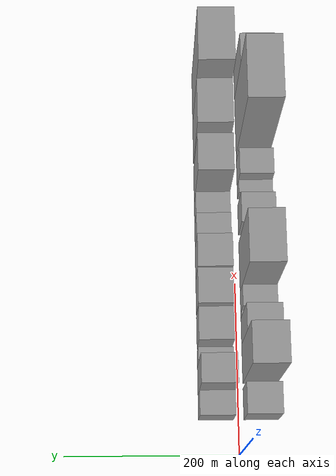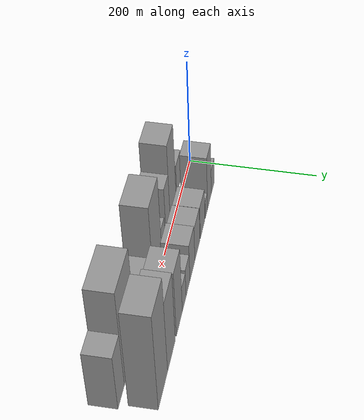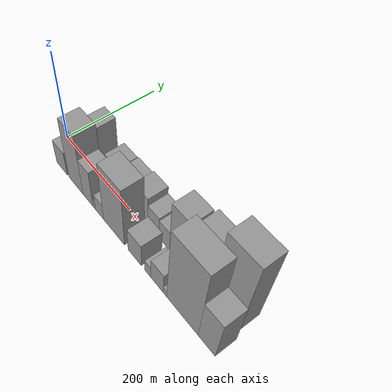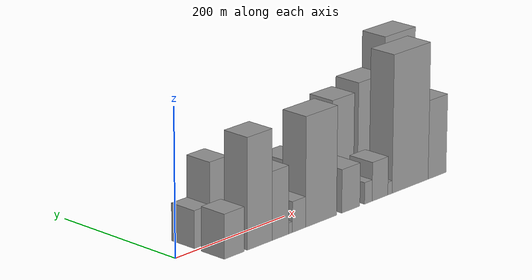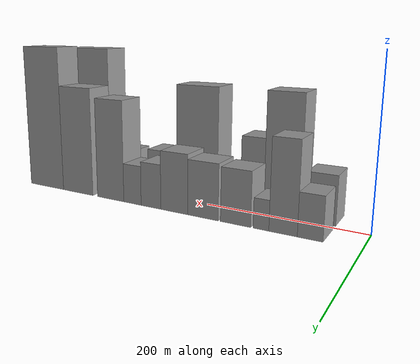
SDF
<sdf version="1.6">
 <world name="default">
  <scene>
   <sky><clouds><speed>12</speed></clouds></sky>
   <ambient>0.4 0.4 0.4 1</ambient>
   <background>0.7 0.7 0.7 1</background>
   <shadows>1</shadows>
  </scene>
  <gravity>0 0 -9.8066</gravity>
  <magnetic_field>6e-06 2.3e-05 -4.2e-05</magnetic_field>
  <physics default="0" name="default_physics" type="ode">
   <ode>
    <solver>
     <type>quick</type>
     <iters>10</iters>
     <sor>1.0</sor>
     <use_dynamic_moi_rescaling>0</use_dynamic_moi_rescaling>
    </solver>
    <constraints>
     <cfm>0</cfm>
     <erp>0.2</erp>
     <contact_max_correcting_vel>100</contact_max_correcting_vel>
     <contact_surface_layer>0.001</contact_surface_layer>
    </constraints>
   </ode>
   <max_step_size>0.004</max_step_size>
   <real_time_factor>1</real_time_factor>
   <real_time_update_rate>250</real_time_update_rate>
  </physics>
  <light name="sun" type="directional">
   <pose>0 0 10 0 0 0</pose>
   <diffuse>0.8 0.8 0.8 1</diffuse>
   <specular>0.2 0.2 0.2 1</specular>
   <attenuation>
    <range>1000</range>
    <constant>0.9</constant>
    <linear>0.01</linear>
    <quadratic>0.001</quadratic>
   </attenuation>
   <direction>-0.5 0.1 -0.9</direction>
  </light>
  <model name="building_1">
   <static>1</static>
   <pose>53.9610 26.0000 0 0.000000 0.000000 1.570796</pose>
   <link name="link">
    <pose>0 0 25.50 0 0 0</pose>
    <collision name="collision"><geometry><box><size>40.0000 27.9219 51.0000</size></box></geometry></collision>
    <visual name="visual">
     <cast_shadows>0</cast_shadows>
     <geometry><box><size>40.0000 27.9219 51.0000</size></box></geometry>
     <material>
      <script>
       <uri>model://grey_wall/materials/scripts</uri>
       <uri>model://grey_wall/materials/textures</uri>
       <name>vrc/grey_wall</name>
      </script>
     </material>
    </visual>
   </link>
  </model>
  <model name="building_2">
   <static>1</static>
   <pose>84.1409 26.0000 0 0.000000 0.000000 1.570796</pose>
   <link name="link">
    <pose>0 0 54.00 0 0 0</pose>
    <collision name="collision"><geometry><box><size>40.0000 32.4379 108.0000</size></box></geometry></collision>
    <visual name="visual">
     <cast_shadows>0</cast_shadows>
     <geometry><box><size>40.0000 32.4379 108.0000</size></box></geometry>
     <material>
      <script>
       <uri>model://grey_wall/materials/scripts</uri>
       <uri>model://grey_wall/materials/textures</uri>
       <name>vrc/grey_wall</name>
      </script>
     </material>
    </visual>
   </link>
  </model>
  <model name="building_3">
   <static>1</static>
   <pose>109.6904 26.0000 0 0.000000 0.000000 1.570796</pose>
   <link name="link">
    <pose>0 0 18.00 0 0 0</pose>
    <collision name="collision"><geometry><box><size>40.0000 18.6612 36.0000</size></box></geometry></collision>
    <visual name="visual">
     <cast_shadows>0</cast_shadows>
     <geometry><box><size>40.0000 18.6612 36.0000</size></box></geometry>
     <material>
      <script>
       <uri>model://grey_wall/materials/scripts</uri>
       <uri>model://grey_wall/materials/textures</uri>
       <name>vrc/grey_wall</name>
      </script>
     </material>
    </visual>
   </link>
  </model>
  <model name="building_4">
   <static>1</static>
   <pose>140.9340 26.0000 0 0.000000 0.000000 1.570796</pose>
   <link name="link">
    <pose>0 0 33.00 0 0 0</pose>
    <collision name="collision"><geometry><box><size>40.0000 37.8259 66.0000</size></box></geometry></collision>
    <visual name="visual">
     <cast_shadows>0</cast_shadows>
     <geometry><box><size>40.0000 37.8259 66.0000</size></box></geometry>
     <material>
      <script>
       <uri>model://grey_wall/materials/scripts</uri>
       <uri>model://grey_wall/materials/textures</uri>
       <name>vrc/grey_wall</name>
      </script>
     </material>
    </visual>
   </link>
  </model>
  <model name="building_5">
   <static>1</static>
   <pose>183.2874 26.0000 0 0.000000 0.000000 1.570796</pose>
   <link name="link">
    <pose>0 0 34.50 0 0 0</pose>
    <collision name="collision"><geometry><box><size>40.0000 40.8809 69.0000</size></box></geometry></collision>
    <visual name="visual">
     <cast_shadows>0</cast_shadows>
     <geometry><box><size>40.0000 40.8809 69.0000</size></box></geometry>
     <material>
      <script>
       <uri>model://grey_wall/materials/scripts</uri>
       <uri>model://grey_wall/materials/textures</uri>
       <name>vrc/grey_wall</name>
      </script>
     </material>
    </visual>
   </link>
  </model>
  <model name="building_6">
   <static>1</static>
   <pose>222.8308 26.0000 0 0.000000 0.000000 1.570796</pose>
   <link name="link">
    <pose>0 0 37.50 0 0 0</pose>
    <collision name="collision"><geometry><box><size>40.0000 38.2059 75.0000</size></box></geometry></collision>
    <visual name="visual">
     <cast_shadows>0</cast_shadows>
     <geometry><box><size>40.0000 38.2059 75.0000</size></box></geometry>
     <material>
      <script>
       <uri>model://grey_wall/materials/scripts</uri>
       <uri>model://grey_wall/materials/textures</uri>
       <name>vrc/grey_wall</name>
      </script>
     </material>
    </visual>
   </link>
  </model>
  <model name="building_7">
   <static>1</static>
   <pose>256.6261 26.0000 0 0.000000 0.000000 1.570796</pose>
   <link name="link">
    <pose>0 0 28.50 0 0 0</pose>
    <collision name="collision"><geometry><box><size>40.0000 29.3845 57.0000</size></box></geometry></collision>
    <visual name="visual">
     <cast_shadows>0</cast_shadows>
     <geometry><box><size>40.0000 29.3845 57.0000</size></box></geometry>
     <material>
      <script>
       <uri>model://grey_wall/materials/scripts</uri>
       <uri>model://grey_wall/materials/textures</uri>
       <name>vrc/grey_wall</name>
      </script>
     </material>
    </visual>
   </link>
  </model>
  <model name="building_8">
   <static>1</static>
   <pose>284.8140 26.0000 0 0.000000 0.000000 1.570796</pose>
   <link name="link">
    <pose>0 0 25.50 0 0 0</pose>
    <collision name="collision"><geometry><box><size>40.0000 26.9914 51.0000</size></box></geometry></collision>
    <visual name="visual">
     <cast_shadows>0</cast_shadows>
     <geometry><box><size>40.0000 26.9914 51.0000</size></box></geometry>
     <material>
      <script>
       <uri>model://grey_wall/materials/scripts</uri>
       <uri>model://grey_wall/materials/textures</uri>
       <name>vrc/grey_wall</name>
      </script>
     </material>
    </visual>
   </link>
  </model>
  <model name="building_9">
   <static>1</static>
   <pose>319.8111 26.0000 0 0.000000 0.000000 1.570796</pose>
   <link name="link">
    <pose>0 0 66.00 0 0 0</pose>
    <collision name="collision"><geometry><box><size>40.0000 43.0029 132.0000</size></box></geometry></collision>
    <visual name="visual">
     <cast_shadows>0</cast_shadows>
     <geometry><box><size>40.0000 43.0029 132.0000</size></box></geometry>
     <material>
      <script>
       <uri>model://grey_wall/materials/scripts</uri>
       <uri>model://grey_wall/materials/textures</uri>
       <name>vrc/grey_wall</name>
      </script>
     </material>
    </visual>
   </link>
  </model>
  <model name="building_10">
   <static>1</static>
   <pose>375.3507 26.0000 0 0.000000 0.000000 1.570796</pose>
   <link name="link">
    <pose>0 0 72.00 0 0 0</pose>
    <collision name="collision"><geometry><box><size>40.0000 52.0764 144.0000</size></box></geometry></collision>
    <visual name="visual">
     <cast_shadows>0</cast_shadows>
     <geometry><box><size>40.0000 52.0764 144.0000</size></box></geometry>
     <material>
      <script>
       <uri>model://grey_wall/materials/scripts</uri>
       <uri>model://grey_wall/materials/textures</uri>
       <name>vrc/grey_wall</name>
      </script>
     </material>
    </visual>
   </link>
  </model>
  <model name="building_11">
   <static>1</static>
   <pose>432.0049 26.0000 0 0.000000 0.000000 1.570796</pose>
   <link name="link">
    <pose>0 0 97.50 0 0 0</pose>
    <collision name="collision"><geometry><box><size>40.0000 61.2319 195.0000</size></box></geometry></collision>
    <visual name="visual">
     <cast_shadows>0</cast_shadows>
     <geometry><box><size>40.0000 61.2319 195.0000</size></box></geometry>
     <material>
      <script>
       <uri>model://grey_wall/materials/scripts</uri>
       <uri>model://grey_wall/materials/textures</uri>
       <name>vrc/grey_wall</name>
      </script>
     </material>
    </visual>
   </link>
  </model>
  <model name="building_12">
   <static>1</static>
   <pose>57.8651 -26.0000 0 0.000000 0.000000 1.570796</pose>
   <link name="link">
    <pose>0 0 30.00 0 0 0</pose>
    <collision name="collision"><geometry><box><size>40.0000 35.7302 60.0000</size></box></geometry></collision>
    <visual name="visual">
     <cast_shadows>0</cast_shadows>
     <geometry><box><size>40.0000 35.7302 60.0000</size></box></geometry>
     <material>
      <script>
       <uri>model://grey_wall/materials/scripts</uri>
       <uri>model://grey_wall/materials/textures</uri>
       <name>vrc/grey_wall</name>
      </script>
     </material>
    </visual>
   </link>
  </model>
  <model name="building_13">
   <static>1</static>
   <pose>104.4608 -26.0000 0 0.000000 0.000000 1.570796</pose>
   <link name="link">
    <pose>0 0 75.00 0 0 0</pose>
    <collision name="collision"><geometry><box><size>40.0000 45.4612 150.0000</size></box></geometry></collision>
    <visual name="visual">
     <cast_shadows>0</cast_shadows>
     <geometry><box><size>40.0000 45.4612 150.0000</size></box></geometry>
     <material>
      <script>
       <uri>model://grey_wall/materials/scripts</uri>
       <uri>model://grey_wall/materials/textures</uri>
       <name>vrc/grey_wall</name>
      </script>
     </material>
    </visual>
   </link>
  </model>
  <model name="building_14">
   <static>1</static>
   <pose>142.5505 -26.0000 0 0.000000 0.000000 1.570796</pose>
   <link name="link">
    <pose>0 0 46.50 0 0 0</pose>
    <collision name="collision"><geometry><box><size>40.0000 30.7182 93.0000</size></box></geometry></collision>
    <visual name="visual">
     <cast_shadows>0</cast_shadows>
     <geometry><box><size>40.0000 30.7182 93.0000</size></box></geometry>
     <material>
      <script>
       <uri>model://grey_wall/materials/scripts</uri>
       <uri>model://grey_wall/materials/textures</uri>
       <name>vrc/grey_wall</name>
      </script>
     </material>
    </visual>
   </link>
  </model>
  <model name="building_15">
   <static>1</static>
   <pose>161.4227 -26.0000 0 0.000000 0.000000 1.570796</pose>
   <link name="link">
    <pose>0 0 7.50 0 0 0</pose>
    <collision name="collision"><geometry><box><size>40.0000 7.0263 15.0000</size></box></geometry></collision>
    <visual name="visual">
     <cast_shadows>0</cast_shadows>
     <geometry><box><size>40.0000 7.0263 15.0000</size></box></geometry>
     <material>
      <script>
       <uri>model://grey_wall/materials/scripts</uri>
       <uri>model://grey_wall/materials/textures</uri>
       <name>vrc/grey_wall</name>
      </script>
     </material>
    </visual>
   </link>
  </model>
  <model name="building_16">
   <static>1</static>
   <pose>177.3652 -26.0000 0 0.000000 0.000000 1.570796</pose>
   <link name="link">
    <pose>0 0 21.00 0 0 0</pose>
    <collision name="collision"><geometry><box><size>40.0000 24.8586 42.0000</size></box></geometry></collision>
    <visual name="visual">
     <cast_shadows>0</cast_shadows>
     <geometry><box><size>40.0000 24.8586 42.0000</size></box></geometry>
     <material>
      <script>
       <uri>model://grey_wall/materials/scripts</uri>
       <uri>model://grey_wall/materials/textures</uri>
       <name>vrc/grey_wall</name>
      </script>
     </material>
    </visual>
   </link>
  </model>
  <model name="building_17">
   <static>1</static>
   <pose>219.5903 -26.0000 0 0.000000 0.000000 1.570796</pose>
   <link name="link">
    <pose>0 0 75.00 0 0 0</pose>
    <collision name="collision"><geometry><box><size>40.0000 59.5916 150.0000</size></box></geometry></collision>
    <visual name="visual">
     <cast_shadows>0</cast_shadows>
     <geometry><box><size>40.0000 59.5916 150.0000</size></box></geometry>
     <material>
      <script>
       <uri>model://grey_wall/materials/scripts</uri>
       <uri>model://grey_wall/materials/textures</uri>
       <name>vrc/grey_wall</name>
      </script>
     </material>
    </visual>
   </link>
  </model>
  <model name="building_18">
   <static>1</static>
   <pose>277.1664 -26.0000 0 0.000000 0.000000 1.570796</pose>
   <link name="link">
    <pose>0 0 30.00 0 0 0</pose>
    <collision name="collision"><geometry><box><size>40.0000 35.5606 60.0000</size></box></geometry></collision>
    <visual name="visual">
     <cast_shadows>0</cast_shadows>
     <geometry><box><size>40.0000 35.5606 60.0000</size></box></geometry>
     <material>
      <script>
       <uri>model://grey_wall/materials/scripts</uri>
       <uri>model://grey_wall/materials/textures</uri>
       <name>vrc/grey_wall</name>
      </script>
     </material>
    </visual>
   </link>
  </model>
  <model name="building_19">
   <static>1</static>
   <pose>311.5501 -26.0000 0 0.000000 0.000000 1.570796</pose>
   <link name="link">
    <pose>0 0 15.00 0 0 0</pose>
    <collision name="collision"><geometry><box><size>40.0000 15.2067 30.0000</size></box></geometry></collision>
    <visual name="visual">
     <cast_shadows>0</cast_shadows>
     <geometry><box><size>40.0000 15.2067 30.0000</size></box></geometry>
     <material>
      <script>
       <uri>model://grey_wall/materials/scripts</uri>
       <uri>model://grey_wall/materials/textures</uri>
       <name>vrc/grey_wall</name>
      </script>
     </material>
    </visual>
   </link>
  </model>
  <model name="building_20">
   <static>1</static>
   <pose>334.8458 -26.0000 0 0.000000 0.000000 1.570796</pose>
   <link name="link">
    <pose>0 0 27.00 0 0 0</pose>
    <collision name="collision"><geometry><box><size>40.0000 31.3847 54.0000</size></box></geometry></collision>
    <visual name="visual">
     <cast_shadows>0</cast_shadows>
     <geometry><box><size>40.0000 31.3847 54.0000</size></box></geometry>
     <material>
      <script>
       <uri>model://grey_wall/materials/scripts</uri>
       <uri>model://grey_wall/materials/textures</uri>
       <name>vrc/grey_wall</name>
      </script>
     </material>
    </visual>
   </link>
  </model>
  <model name="building_21">
   <static>1</static>
   <pose>354.7748 -26.0000 0 0.000000 0.000000 1.570796</pose>
   <link name="link">
    <pose>0 0 9.00 0 0 0</pose>
    <collision name="collision"><geometry><box><size>40.0000 8.4734 18.0000</size></box></geometry></collision>
    <visual name="visual">
     <cast_shadows>0</cast_shadows>
     <geometry><box><size>40.0000 8.4734 18.0000</size></box></geometry>
     <material>
      <script>
       <uri>model://grey_wall/materials/scripts</uri>
       <uri>model://grey_wall/materials/textures</uri>
       <name>vrc/grey_wall</name>
      </script>
     </material>
    </visual>
   </link>
  </model>
  <model name="building_22">
   <static>1</static>
   <pose>395.7836 -26.0000 0 0.000000 0.000000 1.570796</pose>
   <link name="link">
    <pose>0 0 96.00 0 0 0</pose>
    <collision name="collision"><geometry><box><size>40.0000 73.5443 192.0000</size></box></geometry></collision>
    <visual name="visual">
     <cast_shadows>0</cast_shadows>
     <geometry><box><size>40.0000 73.5443 192.0000</size></box></geometry>
     <material>
      <script>
       <uri>model://grey_wall/materials/scripts</uri>
       <uri>model://grey_wall/materials/textures</uri>
       <name>vrc/grey_wall</name>
      </script>
     </material>
    </visual>
   </link>
  </model>
  <model name="building_23">
   <static>1</static>
   <pose>451.2995 -26.0000 0 0.000000 0.000000 1.570796</pose>
   <link name="link">
    <pose>0 0 55.50 0 0 0</pose>
    <collision name="collision"><geometry><box><size>40.0000 37.4874 111.0000</size></box></geometry></collision>
    <visual name="visual">
     <cast_shadows>0</cast_shadows>
     <geometry><box><size>40.0000 37.4874 111.0000</size></box></geometry>
     <material>
      <script>
       <uri>model://grey_wall/materials/scripts</uri>
       <uri>model://grey_wall/materials/textures</uri>
       <name>vrc/grey_wall</name>
      </script>
     </material>
    </visual>
   </link>
  </model>
 </world>
</sdf>
